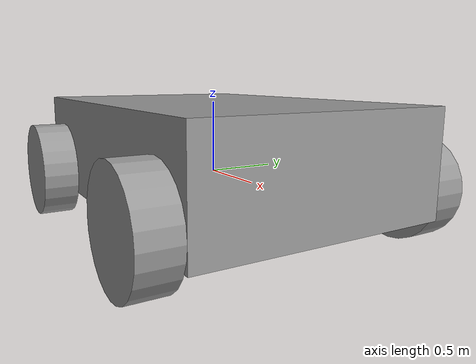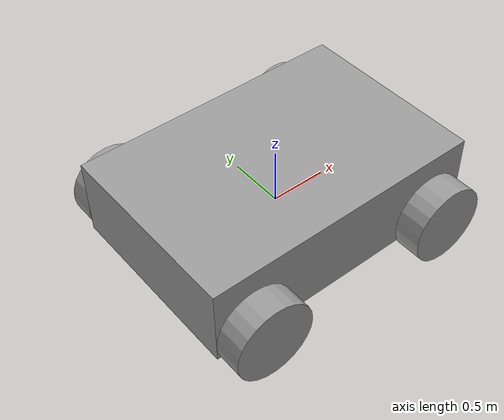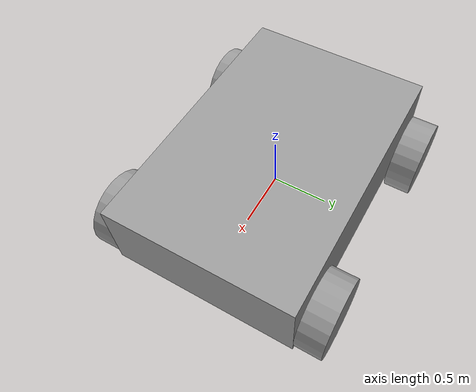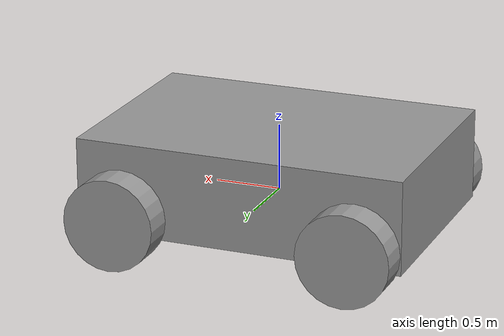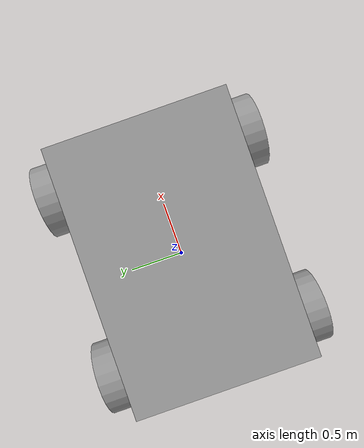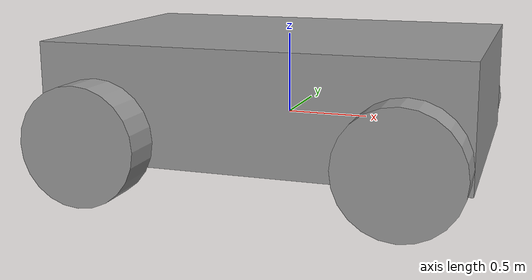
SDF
<?xml version='1.0'?>
<sdf version='1.6'>
  <model name='Teleop_car'>
    <link name='link_0'>
      <inertial>
        <mass>3.1434</mass>
        <inertia>
          <ixx>0.877717</ixx>
          <ixy>0</ixy>
          <ixz>0</ixz>
          <iyy>1.7594</iyy>
          <iyz>0</iyz>
          <izz>2.39269</izz>
        </inertia>
        <pose frame=''>0 0 0 0 -0 0</pose>
      </inertial>
      <pose frame=''>0 0 0.16 0 -0 0</pose>
      <gravity>1</gravity>
      <self_collide>0</self_collide>
      <kinematic>0</kinematic>
      <enable_wind>0</enable_wind>
      <visual name='visual'>
        <pose frame=''>0 0 0 0 -0 0</pose>
        <geometry>
          <box>
            <size>2.5 1.7 0.7</size>
          </box>
        </geometry>
        <material>
          <lighting>1</lighting>
          <script>
            <uri>file://media/materials/scripts/gazebo.material</uri>
            <name>Gazebo/Grey</name>
          </script>
          <shader type='vertex'>
            <normal_map>__default__</normal_map>
          </shader>
          <ambient>0.3 0.3 0.3 1</ambient>
          <diffuse>0.7 0.7 0.7 1</diffuse>
          <specular>0.01 0.01 0.01 1</specular>
          <emissive>0 0 0 1</emissive>
        </material>
        <transparency>0</transparency>
        <cast_shadows>1</cast_shadows>
      </visual>
      <collision name='collision'>
        <laser_retro>0</laser_retro>
        <max_contacts>10</max_contacts>
        <pose frame=''>0 0 0 0 -0 0</pose>
        <geometry>
          <box>
            <size>2.5 1.69828 0.683043</size>
          </box>
        </geometry>
        <surface>
          <friction>
            <ode>
              <mu>1</mu>
              <mu2>1</mu2>
              <fdir1>0 0 0</fdir1>
              <slip1>0</slip1>
              <slip2>0</slip2>
            </ode>
            <torsional>
              <coefficient>1</coefficient>
              <patch_radius>0</patch_radius>
              <surface_radius>0</surface_radius>
              <use_patch_radius>1</use_patch_radius>
              <ode>
                <slip>0</slip>
              </ode>
            </torsional>
          </friction>
          <bounce>
            <restitution_coefficient>0</restitution_coefficient>
            <threshold>1e+06</threshold>
          </bounce>
          <contact>
            <collide_without_contact>0</collide_without_contact>
            <collide_without_contact_bitmask>1</collide_without_contact_bitmask>
            <collide_bitmask>1</collide_bitmask>
            <ode>
              <soft_cfm>0</soft_cfm>
              <soft_erp>0.2</soft_erp>
              <kp>1e+13</kp>
              <kd>1</kd>
              <max_vel>0.01</max_vel>
              <min_depth>0</min_depth>
            </ode>
            <bullet>
              <split_impulse>1</split_impulse>
              <split_impulse_penetration_threshold>-0.01</split_impulse_penetration_threshold>
              <soft_cfm>0</soft_cfm>
              <soft_erp>0.2</soft_erp>
              <kp>1e+13</kp>
              <kd>1</kd>
            </bullet>
          </contact>
        </surface>
      </collision>
    </link>
    <link name='link_0_0'>
      <inertial>
        <mass>0.0218115</mass>
        <inertia>
          <ixx>0.00528267</ixx>
          <ixy>0</ixy>
          <ixz>0</ixz>
          <iyy>0.00528267</iyy>
          <iyz>0</iyz>
          <izz>5.94636e-05</izz>
        </inertia>
        <pose frame=''>0 0 0 0 -0 0</pose>
      </inertial>
      <pose frame=''>0.866921 -2.6e-05 -0.073072 1.57 -0 0</pose>
      <gravity>1</gravity>
      <self_collide>0</self_collide>
      <kinematic>0</kinematic>
      <enable_wind>0</enable_wind>
      <visual name='visual'>
        <pose frame=''>0 0 0 0 -0 0</pose>
        <geometry>
          <cylinder>
            <radius>0.073841</radius>
            <length>1.7</length>
          </cylinder>
        </geometry>
        <material>
          <lighting>1</lighting>
          <script>
            <uri>file://media/materials/scripts/gazebo.material</uri>
            <name>Gazebo/Grey</name>
          </script>
          <shader type='vertex'>
            <normal_map>__default__</normal_map>
          </shader>
          <ambient>0.3 0.3 0.3 1</ambient>
          <diffuse>0.7 0.7 0.7 1</diffuse>
          <specular>0.01 0.01 0.01 1</specular>
          <emissive>0 0 0 1</emissive>
        </material>
        <transparency>0</transparency>
        <cast_shadows>1</cast_shadows>
      </visual>
      <collision name='collision'>
        <laser_retro>0</laser_retro>
        <max_contacts>10</max_contacts>
        <pose frame=''>0 0 0 0 -0 0</pose>
        <geometry>
          <cylinder>
            <radius>0.073841</radius>
            <length>1.7</length>
          </cylinder>
        </geometry>
        <surface>
          <friction>
            <ode>
              <mu>1</mu>
              <mu2>1</mu2>
              <fdir1>0 0 0</fdir1>
              <slip1>0</slip1>
              <slip2>0</slip2>
            </ode>
            <torsional>
              <coefficient>1</coefficient>
              <patch_radius>0</patch_radius>
              <surface_radius>0</surface_radius>
              <use_patch_radius>1</use_patch_radius>
              <ode>
                <slip>0</slip>
              </ode>
            </torsional>
          </friction>
          <bounce>
            <restitution_coefficient>0</restitution_coefficient>
            <threshold>1e+06</threshold>
          </bounce>
          <contact>
            <collide_without_contact>0</collide_without_contact>
            <collide_without_contact_bitmask>1</collide_without_contact_bitmask>
            <collide_bitmask>1</collide_bitmask>
            <ode>
              <soft_cfm>0</soft_cfm>
              <soft_erp>0.2</soft_erp>
              <kp>1e+13</kp>
              <kd>1</kd>
              <max_vel>0.01</max_vel>
              <min_depth>0</min_depth>
            </ode>
            <bullet>
              <split_impulse>1</split_impulse>
              <split_impulse_penetration_threshold>-0.01</split_impulse_penetration_threshold>
              <soft_cfm>0</soft_cfm>
              <soft_erp>0.2</soft_erp>
              <kp>1e+13</kp>
              <kd>1</kd>
            </bullet>
          </contact>
        </surface>
      </collision>
    </link>
    <link name='link_0_0_clone'>
      <inertial>
        <mass>0.0218115</mass>
        <inertia>
          <ixx>0.00528267</ixx>
          <ixy>0</ixy>
          <ixz>0</ixz>
          <iyy>0.00528267</iyy>
          <iyz>0</iyz>
          <izz>5.94636e-05</izz>
        </inertia>
        <pose frame=''>0 0 0 0 -0 0</pose>
      </inertial>
      <pose frame=''>-0.89931 -0.00067 -0.039992 1.57 -2.8e-05 0.000745</pose>
      <gravity>1</gravity>
      <self_collide>0</self_collide>
      <kinematic>0</kinematic>
      <enable_wind>0</enable_wind>
      <visual name='visual'>
        <pose frame=''>0 0 0 0 -0 0</pose>
        <geometry>
          <cylinder>
            <radius>0.073841</radius>
            <length>1.7</length>
          </cylinder>
        </geometry>
        <material>
          <lighting>1</lighting>
          <script>
            <uri>file://media/materials/scripts/gazebo.material</uri>
            <name>Gazebo/Grey</name>
          </script>
          <shader type='vertex'>
            <normal_map>__default__</normal_map>
          </shader>
          <ambient>0.3 0.3 0.3 1</ambient>
          <diffuse>0.7 0.7 0.7 1</diffuse>
          <specular>0.01 0.01 0.01 1</specular>
          <emissive>0 0 0 1</emissive>
        </material>
        <transparency>0</transparency>
        <cast_shadows>1</cast_shadows>
      </visual>
      <collision name='collision'>
        <laser_retro>0</laser_retro>
        <max_contacts>10</max_contacts>
        <pose frame=''>0 0 0 0 -0 0</pose>
        <geometry>
          <cylinder>
            <radius>0.073841</radius>
            <length>1.7</length>
          </cylinder>
        </geometry>
        <surface>
          <friction>
            <ode>
              <mu>1</mu>
              <mu2>1</mu2>
              <fdir1>0 0 0</fdir1>
              <slip1>0</slip1>
              <slip2>0</slip2>
            </ode>
            <torsional>
              <coefficient>1</coefficient>
              <patch_radius>0</patch_radius>
              <surface_radius>0</surface_radius>
              <use_patch_radius>1</use_patch_radius>
              <ode>
                <slip>0</slip>
              </ode>
            </torsional>
          </friction>
          <bounce>
            <restitution_coefficient>0</restitution_coefficient>
            <threshold>1e+06</threshold>
          </bounce>
          <contact>
            <collide_without_contact>0</collide_without_contact>
            <collide_without_contact_bitmask>1</collide_without_contact_bitmask>
            <collide_bitmask>1</collide_bitmask>
            <ode>
              <soft_cfm>0</soft_cfm>
              <soft_erp>0.2</soft_erp>
              <kp>1e+13</kp>
              <kd>1</kd>
              <max_vel>0.01</max_vel>
              <min_depth>0</min_depth>
            </ode>
            <bullet>
              <split_impulse>1</split_impulse>
              <split_impulse_penetration_threshold>-0.01</split_impulse_penetration_threshold>
              <soft_cfm>0</soft_cfm>
              <soft_erp>0.2</soft_erp>
              <kp>1e+13</kp>
              <kd>1</kd>
            </bullet>
          </contact>
        </surface>
      </collision>
    </link>
    <link name='link_1'>
      <inertial>
        <mass>0.243107</mass>
        <inertia>
          <ixx>0.00864251</ixx>
          <ixy>0</ixy>
          <ixz>0</ixz>
          <iyy>0.00864251</iyy>
          <iyz>0</iyz>
          <izz>0.0148903</izz>
        </inertia>
        <pose frame=''>0 0 0 0 -0 0</pose>
      </inertial>
      <pose frame=''>0.9 -0.970974 -0.04 1.57 -0 0</pose>
      <gravity>1</gravity>
      <self_collide>0</self_collide>
      <kinematic>0</kinematic>
      <enable_wind>0</enable_wind>
      <visual name='visual'>
        <pose frame=''>0 0 0 0 -0 0</pose>
        <geometry>
          <cylinder>
            <radius>0.35</radius>
            <length>0.243109</length>
          </cylinder>
        </geometry>
        <material>
          <lighting>1</lighting>
          <script>
            <uri>file://media/materials/scripts/gazebo.material</uri>
            <name>Gazebo/Grey</name>
          </script>
          <shader type='vertex'>
            <normal_map>__default__</normal_map>
          </shader>
          <ambient>0.3 0.3 0.3 1</ambient>
          <diffuse>0.7 0.7 0.7 1</diffuse>
          <specular>0.01 0.01 0.01 1</specular>
          <emissive>0 0 0 1</emissive>
        </material>
        <transparency>0</transparency>
        <cast_shadows>1</cast_shadows>
      </visual>
      <collision name='collision'>
        <laser_retro>0</laser_retro>
        <max_contacts>10</max_contacts>
        <pose frame=''>0 0 0 0 -0 0</pose>
        <geometry>
          <cylinder>
            <radius>0.35</radius>
            <length>0.243109</length>
          </cylinder>
        </geometry>
        <surface>
          <friction>
            <ode>
              <mu>1</mu>
              <mu2>1</mu2>
              <fdir1>0 0 0</fdir1>
              <slip1>0</slip1>
              <slip2>0</slip2>
            </ode>
            <torsional>
              <coefficient>1</coefficient>
              <patch_radius>0</patch_radius>
              <surface_radius>0</surface_radius>
              <use_patch_radius>1</use_patch_radius>
              <ode>
                <slip>0</slip>
              </ode>
            </torsional>
          </friction>
          <bounce>
            <restitution_coefficient>0</restitution_coefficient>
            <threshold>1e+06</threshold>
          </bounce>
          <contact>
            <collide_without_contact>0</collide_without_contact>
            <collide_without_contact_bitmask>1</collide_without_contact_bitmask>
            <collide_bitmask>1</collide_bitmask>
            <ode>
              <soft_cfm>0</soft_cfm>
              <soft_erp>0.2</soft_erp>
              <kp>1e+13</kp>
              <kd>1</kd>
              <max_vel>0.01</max_vel>
              <min_depth>0</min_depth>
            </ode>
            <bullet>
              <split_impulse>1</split_impulse>
              <split_impulse_penetration_threshold>-0.01</split_impulse_penetration_threshold>
              <soft_cfm>0</soft_cfm>
              <soft_erp>0.2</soft_erp>
              <kp>1e+13</kp>
              <kd>1</kd>
            </bullet>
          </contact>
        </surface>
      </collision>
    </link>
    <link name='link_1_clone'>
      <inertial>
        <mass>0.243107</mass>
        <inertia>
          <ixx>0.00864251</ixx>
          <ixy>0</ixy>
          <ixz>0</ixz>
          <iyy>0.00864251</iyy>
          <iyz>0</iyz>
          <izz>0.0148903</izz>
        </inertia>
        <pose frame=''>0 0 0 0 -0 0</pose>
      </inertial>
      <pose frame=''>0.9 0.970974 -0.04 1.57 -0 0</pose>
      <gravity>1</gravity>
      <self_collide>0</self_collide>
      <kinematic>0</kinematic>
      <enable_wind>0</enable_wind>
      <visual name='visual'>
        <pose frame=''>0 0 0 0 -0 0</pose>
        <geometry>
          <cylinder>
            <radius>0.35</radius>
            <length>0.243109</length>
          </cylinder>
        </geometry>
        <material>
          <lighting>1</lighting>
          <script>
            <uri>file://media/materials/scripts/gazebo.material</uri>
            <name>Gazebo/Grey</name>
          </script>
          <shader type='vertex'>
            <normal_map>__default__</normal_map>
          </shader>
          <ambient>0.3 0.3 0.3 1</ambient>
          <diffuse>0.7 0.7 0.7 1</diffuse>
          <specular>0.01 0.01 0.01 1</specular>
          <emissive>0 0 0 1</emissive>
        </material>
        <transparency>0</transparency>
        <cast_shadows>1</cast_shadows>
      </visual>
      <collision name='collision'>
        <laser_retro>0</laser_retro>
        <max_contacts>10</max_contacts>
        <pose frame=''>0 0 0 0 -0 0</pose>
        <geometry>
          <cylinder>
            <radius>0.35</radius>
            <length>0.243109</length>
          </cylinder>
        </geometry>
        <surface>
          <friction>
            <ode>
              <mu>1</mu>
              <mu2>1</mu2>
              <fdir1>0 0 0</fdir1>
              <slip1>0</slip1>
              <slip2>0</slip2>
            </ode>
            <torsional>
              <coefficient>1</coefficient>
              <patch_radius>0</patch_radius>
              <surface_radius>0</surface_radius>
              <use_patch_radius>1</use_patch_radius>
              <ode>
                <slip>0</slip>
              </ode>
            </torsional>
          </friction>
          <bounce>
            <restitution_coefficient>0</restitution_coefficient>
            <threshold>1e+06</threshold>
          </bounce>
          <contact>
            <collide_without_contact>0</collide_without_contact>
            <collide_without_contact_bitmask>1</collide_without_contact_bitmask>
            <collide_bitmask>1</collide_bitmask>
            <ode>
              <soft_cfm>0</soft_cfm>
              <soft_erp>0.2</soft_erp>
              <kp>1e+13</kp>
              <kd>1</kd>
              <max_vel>0.01</max_vel>
              <min_depth>0</min_depth>
            </ode>
            <bullet>
              <split_impulse>1</split_impulse>
              <split_impulse_penetration_threshold>-0.01</split_impulse_penetration_threshold>
              <soft_cfm>0</soft_cfm>
              <soft_erp>0.2</soft_erp>
              <kp>1e+13</kp>
              <kd>1</kd>
            </bullet>
          </contact>
        </surface>
      </collision>
    </link>
    <link name='link_1_clone_0'>
      <inertial>
        <mass>0.243107</mass>
        <inertia>
          <ixx>0.00864251</ixx>
          <ixy>0</ixy>
          <ixz>0</ixz>
          <iyy>0.00864251</iyy>
          <iyz>0</iyz>
          <izz>0.0148903</izz>
        </inertia>
        <pose frame=''>0 0 0 0 -0 0</pose>
      </inertial>
      <pose frame=''>-0.899995 -0.971895 -0.04 1.57 -0 0</pose>
      <gravity>1</gravity>
      <self_collide>0</self_collide>
      <kinematic>0</kinematic>
      <enable_wind>0</enable_wind>
      <visual name='visual'>
        <pose frame=''>0 0 0 0 -0 0</pose>
        <geometry>
          <cylinder>
            <radius>0.35</radius>
            <length>0.243109</length>
          </cylinder>
        </geometry>
        <material>
          <lighting>1</lighting>
          <script>
            <uri>file://media/materials/scripts/gazebo.material</uri>
            <name>Gazebo/Grey</name>
          </script>
          <shader type='vertex'>
            <normal_map>__default__</normal_map>
          </shader>
          <ambient>0.3 0.3 0.3 1</ambient>
          <diffuse>0.7 0.7 0.7 1</diffuse>
          <specular>0.01 0.01 0.01 1</specular>
          <emissive>0 0 0 1</emissive>
        </material>
        <transparency>0</transparency>
        <cast_shadows>1</cast_shadows>
      </visual>
      <collision name='collision'>
        <laser_retro>0</laser_retro>
        <max_contacts>10</max_contacts>
        <pose frame=''>0 0 0 0 -0 0</pose>
        <geometry>
          <cylinder>
            <radius>0.35</radius>
            <length>0.243109</length>
          </cylinder>
        </geometry>
        <surface>
          <friction>
            <ode>
              <mu>1</mu>
              <mu2>1</mu2>
              <fdir1>0 0 0</fdir1>
              <slip1>0</slip1>
              <slip2>0</slip2>
            </ode>
            <torsional>
              <coefficient>1</coefficient>
              <patch_radius>0</patch_radius>
              <surface_radius>0</surface_radius>
              <use_patch_radius>1</use_patch_radius>
              <ode>
                <slip>0</slip>
              </ode>
            </torsional>
          </friction>
          <bounce>
            <restitution_coefficient>0</restitution_coefficient>
            <threshold>1e+06</threshold>
          </bounce>
          <contact>
            <collide_without_contact>0</collide_without_contact>
            <collide_without_contact_bitmask>1</collide_without_contact_bitmask>
            <collide_bitmask>1</collide_bitmask>
            <ode>
              <soft_cfm>0</soft_cfm>
              <soft_erp>0.2</soft_erp>
              <kp>1e+13</kp>
              <kd>1</kd>
              <max_vel>0.01</max_vel>
              <min_depth>0</min_depth>
            </ode>
            <bullet>
              <split_impulse>1</split_impulse>
              <split_impulse_penetration_threshold>-0.01</split_impulse_penetration_threshold>
              <soft_cfm>0</soft_cfm>
              <soft_erp>0.2</soft_erp>
              <kp>1e+13</kp>
              <kd>1</kd>
            </bullet>
          </contact>
        </surface>
      </collision>
    </link>
    <link name='link_1_clone_1'>
      <inertial>
        <mass>0.243107</mass>
        <inertia>
          <ixx>0.00864251</ixx>
          <ixy>0</ixy>
          <ixz>0</ixz>
          <iyy>0.00864251</iyy>
          <iyz>0</iyz>
          <izz>0.0148903</izz>
        </inertia>
        <pose frame=''>0 0 0 0 -0 0</pose>
      </inertial>
      <pose frame=''>-0.900042 0.990296 -0.04 1.57 -0 0</pose>
      <gravity>1</gravity>
      <self_collide>0</self_collide>
      <kinematic>0</kinematic>
      <enable_wind>0</enable_wind>
      <visual name='visual'>
        <pose frame=''>0 0 0 0 -0 0</pose>
        <geometry>
          <cylinder>
            <radius>0.35</radius>
            <length>0.243109</length>
          </cylinder>
        </geometry>
        <material>
          <lighting>1</lighting>
          <script>
            <uri>file://media/materials/scripts/gazebo.material</uri>
            <name>Gazebo/Grey</name>
          </script>
          <shader type='vertex'>
            <normal_map>__default__</normal_map>
          </shader>
          <ambient>0.3 0.3 0.3 1</ambient>
          <diffuse>0.7 0.7 0.7 1</diffuse>
          <specular>0.01 0.01 0.01 1</specular>
          <emissive>0 0 0 1</emissive>
        </material>
        <transparency>0</transparency>
        <cast_shadows>1</cast_shadows>
      </visual>
      <collision name='collision'>
        <laser_retro>0</laser_retro>
        <max_contacts>10</max_contacts>
        <pose frame=''>0 0 0 0 -0 0</pose>
        <geometry>
          <cylinder>
            <radius>0.35</radius>
            <length>0.243109</length>
          </cylinder>
        </geometry>
        <surface>
          <friction>
            <ode>
              <mu>1</mu>
              <mu2>1</mu2>
              <fdir1>0 0 0</fdir1>
              <slip1>0</slip1>
              <slip2>0</slip2>
            </ode>
            <torsional>
              <coefficient>1</coefficient>
              <patch_radius>0</patch_radius>
              <surface_radius>0</surface_radius>
              <use_patch_radius>1</use_patch_radius>
              <ode>
                <slip>0</slip>
              </ode>
            </torsional>
          </friction>
          <bounce>
            <restitution_coefficient>0</restitution_coefficient>
            <threshold>1e+06</threshold>
          </bounce>
          <contact>
            <collide_without_contact>0</collide_without_contact>
            <collide_without_contact_bitmask>1</collide_without_contact_bitmask>
            <collide_bitmask>1</collide_bitmask>
            <ode>
              <soft_cfm>0</soft_cfm>
              <soft_erp>0.2</soft_erp>
              <kp>1e+13</kp>
              <kd>1</kd>
              <max_vel>0.01</max_vel>
              <min_depth>0</min_depth>
            </ode>
            <bullet>
              <split_impulse>1</split_impulse>
              <split_impulse_penetration_threshold>-0.01</split_impulse_penetration_threshold>
              <soft_cfm>0</soft_cfm>
              <soft_erp>0.2</soft_erp>
              <kp>1e+13</kp>
              <kd>1</kd>
            </bullet>
          </contact>
        </surface>
      </collision>
    </link>
    <joint name='Engine' type='revolute'>
      <parent>link_0</parent>
      <child>link_0_0_clone</child>
      <pose frame=''>0 0 0 0 -0 0</pose>
      <axis>
        <xyz>0 0 1</xyz>
        <use_parent_model_frame>0</use_parent_model_frame>
        <limit>
          <lower>-1.79769e+308</lower>
          <upper>1.79769e+308</upper>
          <effort>-1</effort>
          <velocity>-1</velocity>
        </limit>
        <dynamics>
          <spring_reference>0</spring_reference>
          <spring_stiffness>0</spring_stiffness>
          <damping>0</damping>
          <friction>0</friction>
        </dynamics>
      </axis>
      <physics>
        <ode>
          <limit>
            <cfm>0</cfm>
            <erp>0.2</erp>
          </limit>
          <suspension>
            <cfm>0</cfm>
            <erp>0.2</erp>
          </suspension>
        </ode>
      </physics>
    </joint>
    <joint name='Steering' type='revolute'>
      <parent>link_0</parent>
      <child>link_0_0</child>
      <pose frame=''>0 0 0 0 -0 0</pose>
      <axis>
        <xyz>0 1 0</xyz>
        <use_parent_model_frame>0</use_parent_model_frame>
        <limit>
          <lower>-0.523599</lower>
          <upper>0.523599</upper>
          <effort>-1</effort>
          <velocity>-1</velocity>
        </limit>
        <dynamics>
          <spring_reference>0</spring_reference>
          <spring_stiffness>0</spring_stiffness>
          <damping>0</damping>
          <friction>0</friction>
        </dynamics>
      </axis>
      <physics>
        <ode>
          <limit>
            <cfm>0</cfm>
            <erp>0.2</erp>
          </limit>
          <suspension>
            <cfm>0</cfm>
            <erp>0.2</erp>
          </suspension>
        </ode>
      </physics>
    </joint>
    <joint name='link_0_0_JOINT_1' type='revolute'>
      <parent>link_0_0</parent>
      <child>link_1</child>
      <pose frame=''>0 0 0 0 -0 0</pose>
      <axis>
        <xyz>0 0 1</xyz>
        <use_parent_model_frame>0</use_parent_model_frame>
        <limit>
          <lower>-1.79769e+308</lower>
          <upper>1.79769e+308</upper>
          <effort>-1</effort>
          <velocity>-1</velocity>
        </limit>
        <dynamics>
          <spring_reference>0</spring_reference>
          <spring_stiffness>0</spring_stiffness>
          <damping>0</damping>
          <friction>0</friction>
        </dynamics>
      </axis>
      <physics>
        <ode>
          <limit>
            <cfm>0</cfm>
            <erp>0.2</erp>
          </limit>
          <suspension>
            <cfm>0</cfm>
            <erp>0.2</erp>
          </suspension>
        </ode>
      </physics>
    </joint>
    <joint name='link_0_0_JOINT_2' type='revolute'>
      <parent>link_0_0</parent>
      <child>link_1_clone</child>
      <pose frame=''>0 0 0 0 -0 0</pose>
      <axis>
        <xyz>0 0 -1</xyz>
        <use_parent_model_frame>0</use_parent_model_frame>
        <limit>
          <lower>-1.79769e+308</lower>
          <upper>1.79769e+308</upper>
          <effort>-1</effort>
          <velocity>-1</velocity>
        </limit>
        <dynamics>
          <spring_reference>0</spring_reference>
          <spring_stiffness>0</spring_stiffness>
          <damping>0</damping>
          <friction>0</friction>
        </dynamics>
      </axis>
      <physics>
        <ode>
          <limit>
            <cfm>0</cfm>
            <erp>0.2</erp>
          </limit>
          <suspension>
            <cfm>0</cfm>
            <erp>0.2</erp>
          </suspension>
        </ode>
      </physics>
    </joint>
    <joint name='link_0_0_clone_JOINT_0' type='fixed'>
      <parent>link_0_0_clone</parent>
      <child>link_1_clone_1</child>
      <pose frame=''>0 0 0 0 -0 0</pose>
      <physics>
        <ode>
          <limit>
            <cfm>0</cfm>
            <erp>0.2</erp>
          </limit>
          <suspension>
            <cfm>0</cfm>
            <erp>0.2</erp>
          </suspension>
        </ode>
      </physics>
    </joint>
    <joint name='link_1_clone_0_JOINT_3' type='fixed'>
      <parent>link_0_0_clone</parent>
      <child>link_1_clone_0</child>
      <pose frame=''>0 0 0 0 -0 0</pose>
      <physics>
        <ode>
          <limit>
            <cfm>0</cfm>
            <erp>0.2</erp>
          </limit>
          <suspension>
            <cfm>0</cfm>
            <erp>0.2</erp>
          </suspension>
        </ode>
      </physics>
    </joint>
    <static>0</static>
    <allow_auto_disable>1</allow_auto_disable>
  </model>
</sdf>
